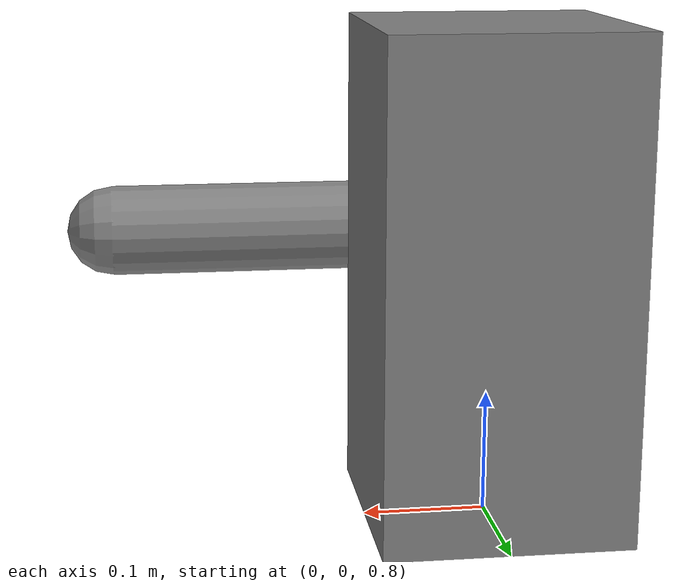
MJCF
<mujoco model="humanoid">

    <option gravity="0 0 -9.81"/>

    <worldbody>

        <body name="torso" pos="0 0 1">

            <joint type="free"/>

            <geom
                type="box"
                size=".1 .1 .2"/>

            <body
                name="right_arm"
                pos="0 -.2 0">

                <joint
                    name="right_shoulder"
                    type="hinge"
                    axis="0 1 0"
                    damping="8"/>

                <geom
                    type="capsule"
                    fromto="0 0 0 .3 0 0"
                    size=".04"/>

            </body>

        </body>

    </worldbody>

    <actuator>

        <position
            joint="right_shoulder"
            kp="20"/>

    </actuator>

</mujoco>
